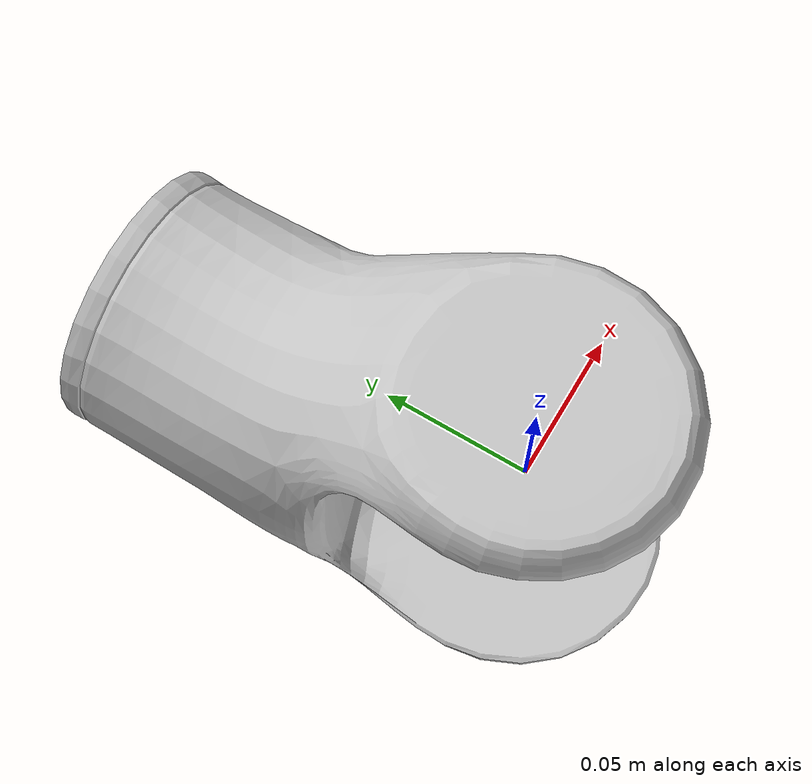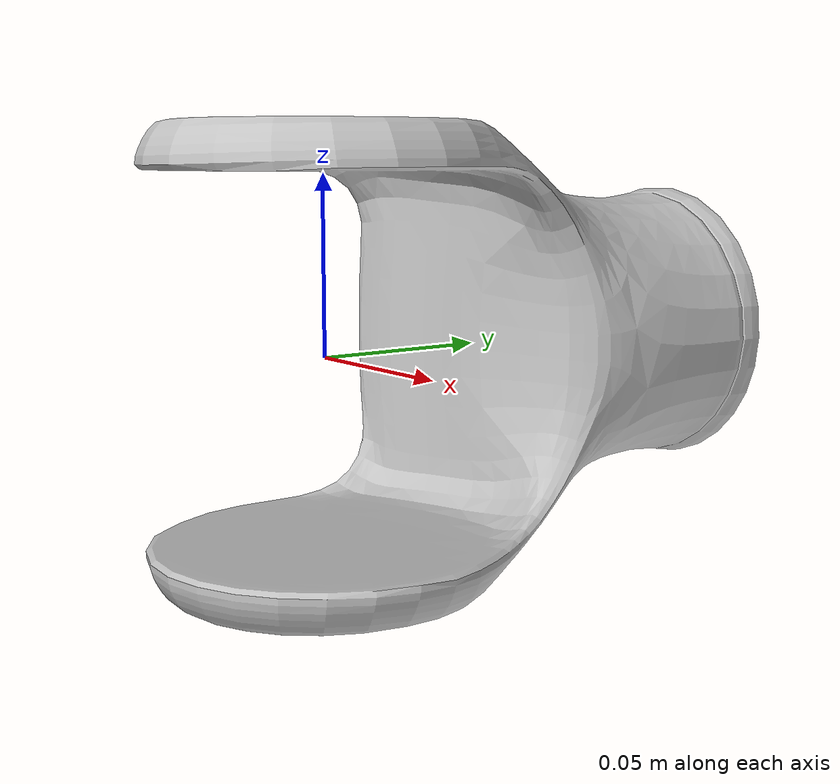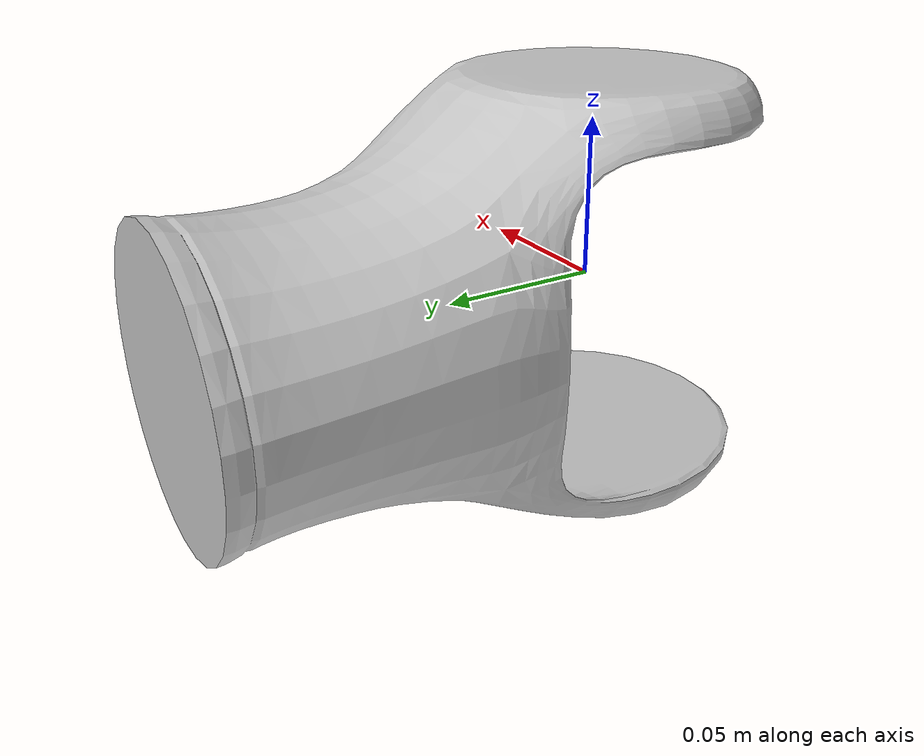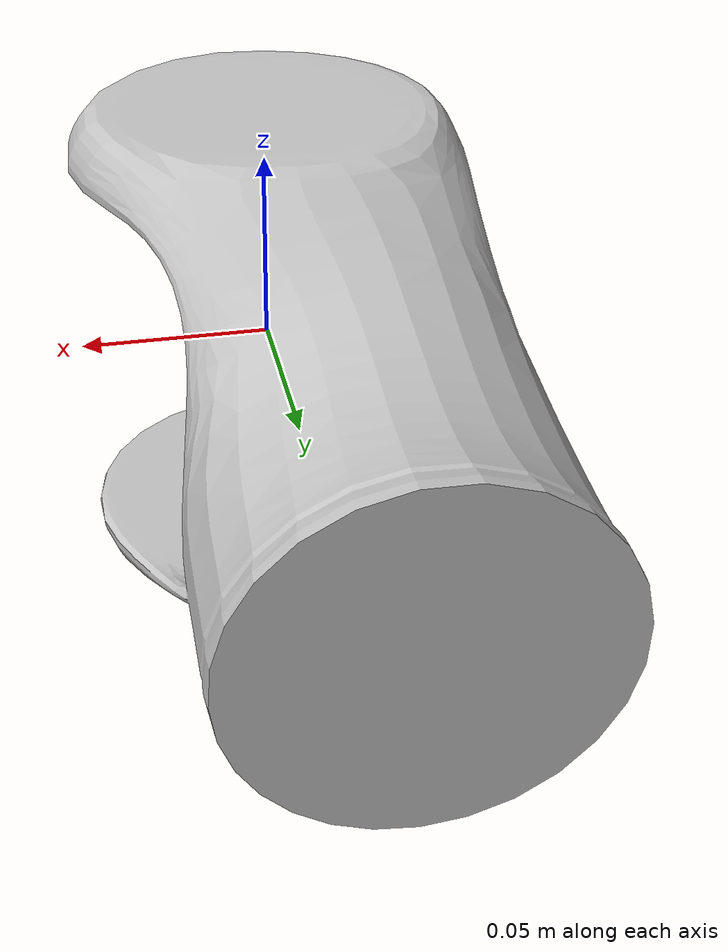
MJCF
<mujoco model="arm_r_link4">
  <default>
    <default class="visual">
      <geom group="2" type="mesh" contype="0" conaffinity="0"/>
    </default>
    <default class="collision">
      <geom group="3" type="mesh"/>
    </default>
  </default>
  <asset>
    <material name="material_arm_r_link4_0" specular="0.20000000000000004" shininess="1.0" rgba="0.76470588 0.76470588 0.76470588 1.0"/>
    <mesh file="arm_r_link4.obj"/>
  </asset>
  <worldbody>
    <body name="arm_r_link4">
      <geom material="material_arm_r_link4_0" mesh="arm_r_link4" class="visual"/>
      <geom mesh="arm_r_link4" class="collision"/>
    </body>
  </worldbody>
</mujoco>
